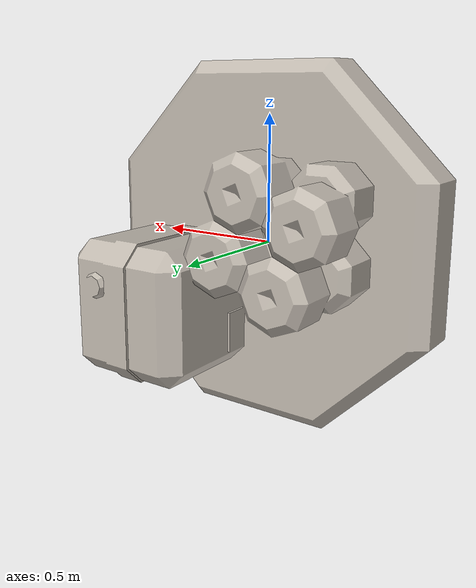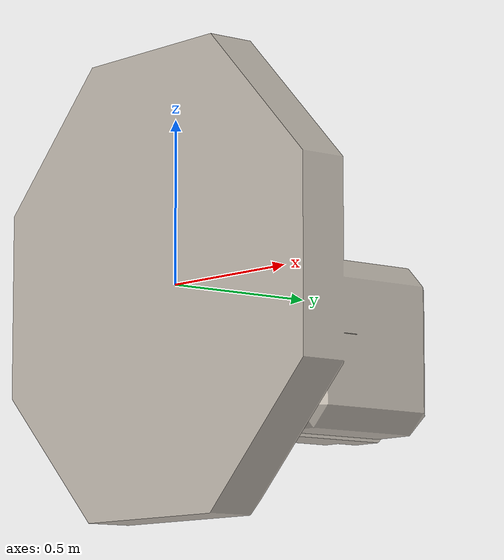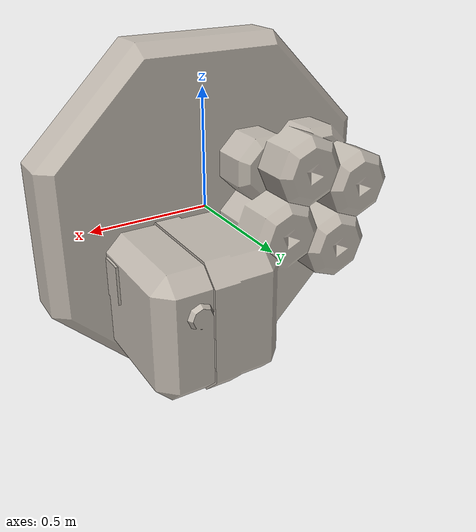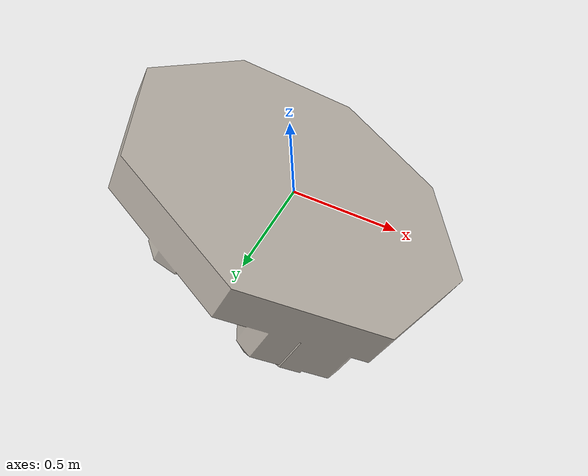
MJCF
<mujoco model="roofmodule_cargo_A">
  <default>
    <default class="visual">
      <geom group="2" type="mesh" contype="0" conaffinity="0" />
    </default>
    <default class="collision">
      <geom group="3" type="mesh" />
    </default>
  </default>
  <asset>
    <texture type="2d" name="roofmodule_cargo_A_spacebits_texture" file="spacebits_texture.png" />
    <material name="roofmodule_cargo_A_spacebits_texture" texture="roofmodule_cargo_A_spacebits_texture" specular="0.50196078" shininess="0.15999998099999999" />
    <mesh file="roofmodule_cargo_A.obj" name="roofmodule_cargo_A_roofmodule_cargo_A" />
  </asset>
  <worldbody>
    <body name="roofmodule_cargo_A">
      <geom material="roofmodule_cargo_A_spacebits_texture" mesh="roofmodule_cargo_A_roofmodule_cargo_A" class="visual" />
      <geom mesh="roofmodule_cargo_A_roofmodule_cargo_A" class="collision" />
    </body>
  </worldbody>
</mujoco>
